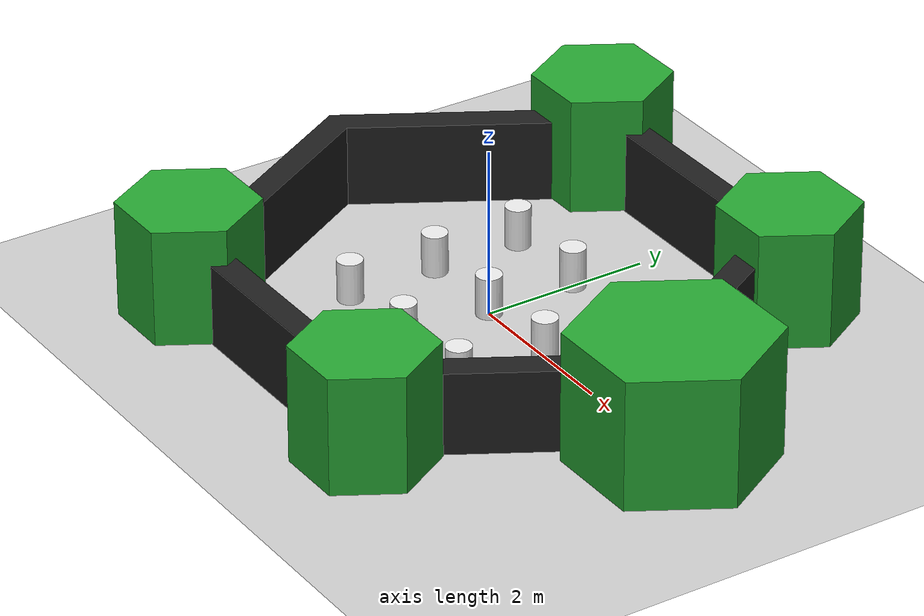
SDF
<?xml version="1.0"?>
<sdf version="1.9">
  <world name="tb3_landmark_world">

    <plugin filename="gz-sim-physics-system"
            name="gz::sim::systems::Physics">
      <engine><filename>gz-physics-dartsim-plugin</filename></engine>
    </plugin>
    <plugin filename="gz-sim-scene-broadcaster-system"
            name="gz::sim::systems::SceneBroadcaster"/>
    <plugin filename="gz-sim-user-commands-system"
            name="gz::sim::systems::UserCommands"/>
    <plugin filename="gz-sim-sensors-system"
            name="gz::sim::systems::Sensors">
      <render_engine>ogre2</render_engine>
    </plugin>

    <light name="sun" type="directional">
      <cast_shadows>true</cast_shadows>
      <pose>0 0 10 0 0 0</pose>
      <diffuse>0.8 0.8 0.8 1</diffuse>
      <specular>0.2 0.2 0.2 1</specular>
      <attenuation>
        <range>1000</range>
        <constant>0.9</constant>
        <linear>0.01</linear>
        <quadratic>0.001</quadratic>
      </attenuation>
      <direction>-0.5 0.1 -0.9</direction>
    </light>

    <model name="ground_plane">
      <static>true</static>
      <link name="link">
        <collision name="surface">
          <geometry><plane><normal>0 0 1</normal><size>100 100</size></plane></geometry>
        </collision>
        <visual name="surface">
          <geometry><plane><normal>0 0 1</normal><size>100 100</size></plane></geometry>
          <material>
            <ambient>0.8 0.8 0.8 1</ambient>
            <diffuse>0.8 0.8 0.8 1</diffuse>
          </material>
        </visual>
      </link>
    </model>

    <include>
      <uri>model://turtlebot3_world</uri>
    </include>

  </world>
</sdf>

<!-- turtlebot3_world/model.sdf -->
<sdf version='1.5'>
    <!-- Draw Circle -->
    <model name='ros_symbol'>
      <static>1</static>
      <link name='symbol'>
        <collision name='one_one'>
          <pose>-1.1 -1.1 0.25 0 0 0</pose>
          <geometry>
            <cylinder>
              <radius>0.15</radius>
              <length>0.5</length>
            </cylinder>
          </geometry>
          <max_contacts>10</max_contacts>
          <surface>
            <bounce/>
            <friction>
              <ode/>
            </friction>
            <contact>
              <ode/>
            </contact>
          </surface>
        </collision>

        <visual name='one_one'>
          <pose>-1.1 -1.1 0.25 0 0 0</pose>
          <geometry>
            <cylinder>
              <radius>0.15</radius>
              <length>0.5</length>
            </cylinder>
          </geometry>
          <material>
            <script>
              <uri>file://media/materials/scripts/gazebo.material</uri>
              <name>Gazebo/White</name>
            </script>
          </material>
        </visual>

        <collision name='one_two'>
          <pose>-1.1 0 0.25 0 0 0</pose>
          <geometry>
            <cylinder>
              <radius>0.15</radius>
              <length>0.5</length>
            </cylinder>
          </geometry>
          <max_contacts>10</max_contacts>
          <surface>
            <bounce/>
            <friction>
              <ode/>
            </friction>
            <contact>
              <ode/>
            </contact>
          </surface>
        </collision>

        <visual name='one_two'>
          <pose>-1.1 0 0.25 0 0 0</pose>
          <geometry>
            <cylinder>
              <radius>0.15</radius>
              <length>0.5</length>
            </cylinder>
          </geometry>
          <material>
            <script>
              <uri>file://media/materials/scripts/gazebo.material</uri>
              <name>Gazebo/White</name>
            </script>
          </material>
        </visual>

        <collision name='one_three'>
          <pose>-1.1 1.1 0.25 0 0 0</pose>
          <geometry>
            <cylinder>
              <radius>0.15</radius>
              <length>0.5</length>
            </cylinder>
          </geometry>
          <max_contacts>10</max_contacts>
          <surface>
            <bounce/>
            <friction>
              <ode/>
            </friction>
            <contact>
              <ode/>
            </contact>
          </surface>
        </collision>

        <visual name='one_three'>
          <pose>-1.1 1.1 0.25 0 0 0</pose>
          <geometry>
            <cylinder>
              <radius>0.15</radius>
              <length>0.5</length>
            </cylinder>
          </geometry>
          <material>
            <script>
              <uri>file://media/materials/scripts/gazebo.material</uri>
              <name>Gazebo/White</name>
            </script>
          </material>
        </visual>

        <collision name='two_one'>
          <pose>0 -1.1 0.25 0 0 0</pose>
          <geometry>
            <cylinder>
              <radius>0.15</radius>
              <length>0.5</length>
            </cylinder>
          </geometry>
          <max_contacts>10</max_contacts>
          <surface>
            <bounce/>
            <friction>
              <ode/>
            </friction>
            <contact>
              <ode/>
            </contact>
          </surface>
        </collision>

        <visual name='two_one'>
          <pose>0 -1.1 0.25 0 0 0</pose>
          <geometry>
            <cylinder>
              <radius>0.15</radius>
              <length>0.5</length>
            </cylinder>
          </geometry>
          <material>
            <script>
              <uri>file://media/materials/scripts/gazebo.material</uri>
              <name>Gazebo/White</name>
            </script>
          </material>
        </visual>

        <collision name='two_two'>
          <pose>0 0 0.25 0 0 0</pose>
          <geometry>
            <cylinder>
              <radius>0.15</radius>
              <length>0.5</length>
            </cylinder>
          </geometry>
          <max_contacts>10</max_contacts>
          <surface>
            <bounce/>
            <friction>
              <ode/>
            </friction>
            <contact>
              <ode/>
            </contact>
          </surface>
        </collision>

        <visual name='two_two'>
          <pose>0 0 0.25 0 0 0</pose>
          <geometry>
            <cylinder>
              <radius>0.15</radius>
              <length>0.5</length>
            </cylinder>
          </geometry>
          <material>
            <script>
              <uri>file://media/materials/scripts/gazebo.material</uri>
              <name>Gazebo/White</name>
            </script>
          </material>
        </visual>

        <collision name='two_three'>
          <pose>0 1.1 0.25 0 0 0</pose>
          <geometry>
            <cylinder>
              <radius>0.15</radius>
              <length>0.5</length>
            </cylinder>
          </geometry>
          <max_contacts>10</max_contacts>
          <surface>
            <bounce/>
            <friction>
              <ode/>
            </friction>
            <contact>
              <ode/>
            </contact>
          </surface>
        </collision>

        <visual name='two_three'>
          <pose>0 1.1 0.25 0 0 0</pose>
          <geometry>
            <cylinder>
              <radius>0.15</radius>
              <length>0.5</length>
            </cylinder>
          </geometry>
          <material>
            <script>
              <uri>file://media/materials/scripts/gazebo.material</uri>
              <name>Gazebo/White</name>
            </script>
          </material>
        </visual>

        <collision name='three_one'>
          <pose>1.1 -1.1 0.25 0 0 0</pose>
          <geometry>
            <cylinder>
              <radius>0.15</radius>
              <length>0.5</length>
            </cylinder>
          </geometry>
          <max_contacts>10</max_contacts>
          <surface>
            <bounce/>
            <friction>
              <ode/>
            </friction>
            <contact>
              <ode/>
            </contact>
          </surface>
        </collision>

        <visual name='three_one'>
          <pose>1.1 -1.1 0.25 0 0 0</pose>
          <geometry>
            <cylinder>
              <radius>0.15</radius>
              <length>0.5</length>
            </cylinder>
          </geometry>
          <material>
            <script>
              <uri>file://media/materials/scripts/gazebo.material</uri>
              <name>Gazebo/White</name>
            </script>
          </material>
        </visual>

        <collision name='three_two'>
          <pose>1.1 0 0.25 0 0 0</pose>
          <geometry>
            <cylinder>
              <radius>0.15</radius>
              <length>0.5</length>
            </cylinder>
          </geometry>
          <max_contacts>10</max_contacts>
          <surface>
            <bounce/>
            <friction>
              <ode/>
            </friction>
            <contact>
              <ode/>
            </contact>
          </surface>
        </collision>

        <visual name='three_two'>
          <pose>1.1 0 0.25 0 0 0</pose>
          <geometry>
            <cylinder>
              <radius>0.15</radius>
              <length>0.5</length>
            </cylinder>
          </geometry>
          <material>
            <script>
              <uri>file://media/materials/scripts/gazebo.material</uri>
              <name>Gazebo/White</name>
            </script>
          </material>
        </visual>

        <collision name='three_three'>
          <pose>1.1 1.1 0.25 0 0 0</pose>
          <geometry>
            <cylinder>
              <radius>0.15</radius>
              <length>0.5</length>
            </cylinder>
          </geometry>
          <max_contacts>10</max_contacts>
          <surface>
            <bounce/>
            <friction>
              <ode/>
            </friction>
            <contact>
              <ode/>
            </contact>
          </surface>
        </collision>

        <visual name='three_three'>
          <pose>1.1 1.1 0.25 0 0 0</pose>
          <geometry>
            <cylinder>
              <radius>0.15</radius>
              <length>0.5</length>
            </cylinder>
          </geometry>
          <material>
            <script>
              <uri>file://media/materials/scripts/gazebo.material</uri>
              <name>Gazebo/White</name>
            </script>
          </material>
        </visual>

        <!-- Draw Hexagon -->
        <collision name='head'>
          <pose>3.5 0 -0.5 0 0 0</pose>
          <geometry>
            <mesh>
              <uri>model://turtlebot3_world/meshes/hexagon.dae</uri>
              <scale>0.8 0.8 0.8</scale>
            </mesh>
          </geometry>
          <max_contacts>10</max_contacts>
          <surface>
            <bounce/>
            <friction>
              <ode/>
            </friction>
            <contact>
              <ode/>
            </contact>
          </surface>
        </collision>

        <visual name='head'>
          <pose>3.5 0 -0.5 0 0 0</pose>
          <geometry>
            <mesh>
              <uri>model://turtlebot3_world/meshes/hexagon.dae</uri>
              <scale>0.8 0.8 0.8</scale>
            </mesh>
          </geometry>
          <material>
            <script>
              <uri>file://media/materials/scripts/gazebo.material</uri>
              <name>Gazebo/Green</name>
            </script>
          </material>
        </visual>

        <collision name='left_hand'>
          <pose>1.8 2.7 0 0 0 0</pose>
          <geometry>
            <mesh>
              <uri>model://turtlebot3_world/meshes/hexagon.dae</uri>
              <scale>0.55 0.55 0.55</scale>
            </mesh>
          </geometry>
          <max_contacts>10</max_contacts>
          <surface>
            <bounce/>
            <friction>
              <ode/>
            </friction>
            <contact>
              <ode/>
            </contact>
          </surface>
        </collision>

        <visual name='left_hand'>
          <pose>1.8 2.7 0 0 0 0</pose>
          <geometry>
            <mesh>
              <uri>model://turtlebot3_world/meshes/hexagon.dae</uri>
              <scale>0.55 0.55 0.55</scale>
            </mesh>
          </geometry>
          <material>
            <script>
              <uri>file://media/materials/scripts/gazebo.material</uri>
              <name>Gazebo/Green</name>
            </script>
          </material>
        </visual>

        <collision name='right_hand'>
          <pose>1.8 -2.7 0 0 0 0</pose>
          <geometry>
            <mesh>
              <uri>model://turtlebot3_world/meshes/hexagon.dae</uri>
              <scale>0.55 0.55 0.55</scale>
            </mesh>
          </geometry>
          <max_contacts>10</max_contacts>
          <surface>
            <bounce/>
            <friction>
              <ode/>
            </friction>
            <contact>
              <ode/>
            </contact>
          </surface>
        </collision>

        <visual name='right_hand'>
          <pose>1.8 -2.7 0 0 0 0</pose>
          <geometry>
            <mesh>
              <uri>model://turtlebot3_world/meshes/hexagon.dae</uri>
              <scale>0.55 0.55 0.55</scale>
            </mesh>
          </geometry>
          <material>
            <script>
              <uri>file://media/materials/scripts/gazebo.material</uri>
              <name>Gazebo/Green</name>
            </script>
          </material>
        </visual>

        <collision name='left_foot'>
          <pose>-1.8 2.7 0 0 0 0</pose>
          <geometry>
            <mesh>
              <uri>model://turtlebot3_world/meshes/hexagon.dae</uri>
              <scale>0.55 0.55 0.55</scale>
            </mesh>
          </geometry>
          <max_contacts>10</max_contacts>
          <surface>
            <bounce/>
            <friction>
              <ode/>
            </friction>
            <contact>
              <ode/>
            </contact>
          </surface>
        </collision>

        <visual name='left_foot'>
          <pose>-1.8 2.7 0 0 0 0</pose>
          <geometry>
            <mesh>
              <uri>model://turtlebot3_world/meshes/hexagon.dae</uri>
              <scale>0.55 0.55 0.55</scale>
            </mesh>
          </geometry>
          <material>
            <script>
              <uri>file://media/materials/scripts/gazebo.material</uri>
              <name>Gazebo/Green</name>
            </script>
          </material>
        </visual>

        <collision name='right_foot'>
          <pose>-1.8 -2.7 0 0 0 0</pose>
          <geometry>
            <mesh>
              <uri>model://turtlebot3_world/meshes/hexagon.dae</uri>
              <scale>0.55 0.55 0.55</scale>
            </mesh>
          </geometry>
          <max_contacts>10</max_contacts>
          <surface>
            <bounce/>
            <friction>
              <ode/>
            </friction>
            <contact>
              <ode/>
            </contact>
          </surface>
        </collision>

        <visual name='right_foot'>
          <pose>-1.8 -2.7 0 0 0 0</pose>
          <geometry>
            <mesh>
              <uri>model://turtlebot3_world/meshes/hexagon.dae</uri>
              <scale>0.55 0.55 0.55</scale>
            </mesh>
          </geometry>
          <material>
            <script>
              <uri>file://media/materials/scripts/gazebo.material</uri>
              <name>Gazebo/Green</name>
            </script>
          </material>
        </visual>

        <!-- Draw Wall -->
        <collision name='body'>
          <pose>0 0 -0.3 0 0 -1.5708</pose>
          <geometry>
            <mesh>
              <uri>model://turtlebot3_world/meshes/wall.dae</uri>
              <scale>0.25 0.25 0.25</scale>
            </mesh>
          </geometry>
          <max_contacts>10</max_contacts>
          <surface>
            <bounce/>
            <friction>
              <ode/>
            </friction>
            <contact>
              <ode/>
            </contact>
          </surface>
        </collision>

        <visual name='body'>
          <pose>0 0 -0.3 0 0 -1.5708</pose>
          <geometry>
            <mesh>
              <uri>model://turtlebot3_world/meshes/wall.dae</uri>
              <scale>0.25 0.25 0.25</scale>
            </mesh>
          </geometry>
          <material>
            <script>
              <uri>file://media/materials/scripts/gazebo.material</uri>
              <name>Gazebo/FlatBlack</name>
            </script>
          </material>
        </visual>

        <collision name='landmark'>
          <pose>1.8 0.0 0.25 0 0 0</pose>
          <geometry>
            <cylinder>
              <radius>0.05</radius>
              <length>0.5</length>
            </cylinder>
          </geometry>
          <max_contacts>10</max_contacts>
          <surface>
            <bounce/>
            <friction>
              <ode/>
            </friction>
            <contact>
              <ode/>
            </contact>
          </surface>
        </collision>

        <visual name='landmark'>
          <pose>1.8 0.0 0.25 0 0 0</pose>
          <geometry>
            <cylinder>
              <radius>0.05</radius>
              <length>0.5</length>
            </cylinder>
          </geometry>
          <material>
            <script>
              <uri>file://media/materials/scripts/gazebo.material</uri>
              <name>Gazebo/Blue</name>
            </script>
          </material>
        </visual>

      </link>
    </model>
</sdf>
